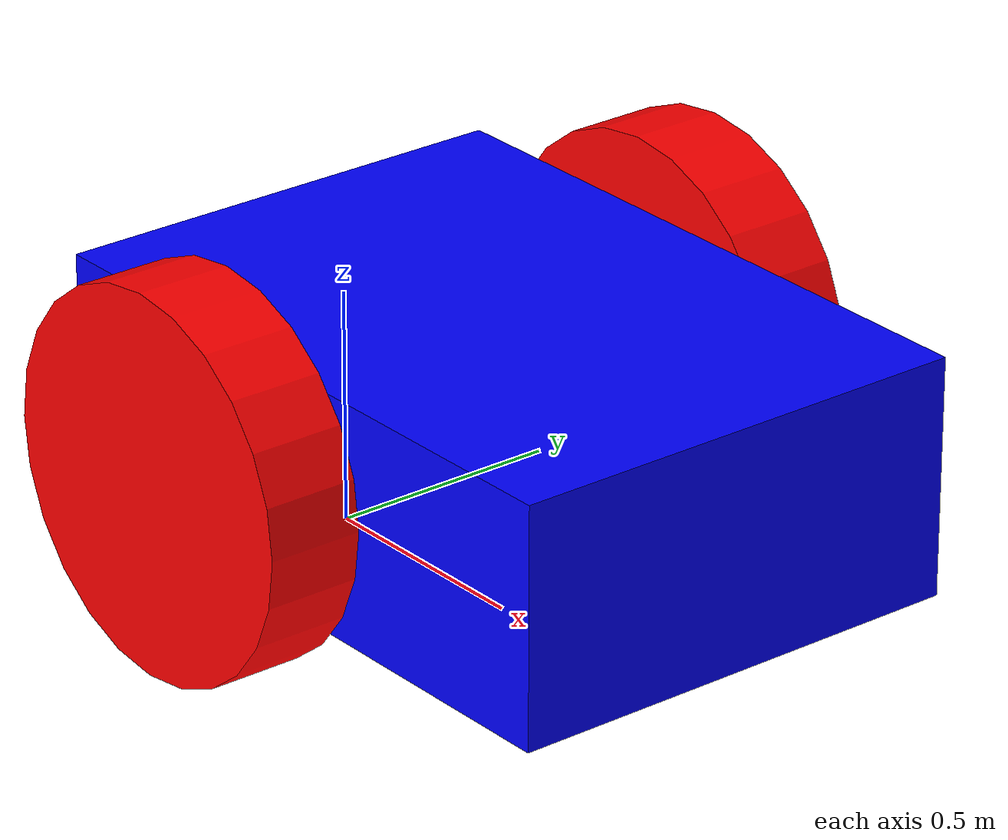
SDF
<?xml version="1.0"?>
<sdf version="1.8">

        <model name='vehicle_blue' canonical_link='chassis'>

            <frame name="lidar_frame" attached_to='chassis'>
                    <pose>0.8 0 0.5 0 0 0</pose>
            </frame>
            <frame name="base_link" attached_to="chassis">
                    <pose>0 0 0 0 0 0</pose>
            </frame>

            <!--chassis-->
            <link name='chassis'>
                <pose relative_to='__model__'>0.5 0 0.4 0 0 0</pose>
                <inertial> <!--inertial properties of the link mass, inertia matix-->
                    <mass>1.14395</mass>
                    <inertia>
                        <ixx>3.5329</ixx>
                        <ixy>0</ixy>
                        <ixz>0</ixz>
                        <iyy>3.81317</iyy>
                        <iyz>0</iyz>
                        <izz>4.76646</izz>
                    </inertia>
                </inertial>
                <visual name='visual'>
                    <geometry>
                        <box>
                            <size>1.4 1.0 0.5</size>
                        </box>
                    </geometry>
                    <!--Color of the link-->
                    <material>
                        <ambient>0.0 0.0 1.0 1</ambient>
                        <diffuse>0.0 0.0 1.0 1</diffuse>
                        <specular>0.0 0.0 1.0 1</specular>
                    </material>
                </visual>
                <collision name='collision'>
                    <geometry>
                        <box>
                            <size>1.4 1.0 0.5</size>
                        </box>
                    </geometry>
                </collision>
                <sensor name="imu_sensor" type="imu">
                    <always_on>1</always_on>
                    <update_rate>1</update_rate>
                    <visualize>true</visualize>
                    <topic>imu</topic>
                </sensor>

                <sensor name='gpu_lidar' type='gpu_lidar'>
                    <pose relative_to='lidar_frame'>0 0 0 0 0 0</pose>
                    <topic>/scan</topic>
                    <update_rate>5</update_rate>
                    <ray>
                        <scan>
                            <horizontal>
                                <samples>180</samples>
                                <resolution>1</resolution>
                                <min_angle>-1.396263</min_angle>
                                <max_angle>1.396263</max_angle>
                            </horizontal>
                            <vertical>
                                <samples>1</samples>
                                <resolution>0.01</resolution>
                                <min_angle>0</min_angle>
                                <max_angle>0</max_angle>
                            </vertical>
                        </scan>
                        <range>
                            <min>0.08</min>
                            <max>100.0</max>
                            <resolution>0.01</resolution>
                        </range>
                    </ray>
                    <always_on>1</always_on>
                    <visualize>true</visualize>
                </sensor>
                <!-- Contact (bumper) sensor -->
                <sensor name="bumper_contacts" type="contact">
                      <update_rate>50</update_rate>
                      <!-- Monitor this/these collision(s) for contacts -->
                      <contact>
                        <collision>collision</collision>
                      </contact>
                      <!-- Gazebo Transport topic name -->
                      <topic>contacts</topic>
                      <always_on>true</always_on>
                      <visualize>false</visualize>
                </sensor>
            </link>

            <!--Left wheel-->
            <link name='left_wheel'>
                <pose relative_to="chassis">-0.2 0.6 0 -1.5707 0 0</pose> <!--angles are in radian-->
                <inertial>
                    <mass>1</mass>
                    <inertia>
                        <ixx>0.043333</ixx>
                        <ixy>0</ixy>
                        <ixz>0</ixz>
                        <iyy>0.043333</iyy>
                        <iyz>0</iyz>
                        <izz>0.08</izz>
                    </inertia>
                </inertial>
                <visual name='visual'>
                    <geometry>
                        <cylinder>
                            <radius>0.4</radius>
                            <length>0.2</length>
                        </cylinder>
                    </geometry>
                    <material>
                        <ambient>1.0 0.0 0.0 1</ambient>
                        <diffuse>1.0 0.0 0.0 1</diffuse>
                        <specular>1.0 0.0 0.0 1</specular>
                    </material>
                </visual>
                <collision name='collision'>
                    <geometry>
                        <cylinder>
                            <radius>0.4</radius>
                            <length>0.2</length>
                        </cylinder>
                    </geometry>
                </collision>
            </link>

            <!--The same as left wheel but with different position-->
            <link name='right_wheel'>
                <pose relative_to="chassis">-0.2 -0.6 0 -1.5707 0 0</pose> <!--angles are in radian-->
                <inertial>
                    <mass>1</mass>
                    <inertia>
                        <ixx>0.043333</ixx>
                        <ixy>0</ixy>
                        <ixz>0</ixz>
                        <iyy>0.043333</iyy>
                        <iyz>0</iyz>
                        <izz>0.08</izz>
                    </inertia>
                </inertial>
                <visual name='visual'>
                    <geometry>
                        <cylinder>
                            <radius>0.4</radius>
                            <length>0.2</length>
                        </cylinder>
                    </geometry>
                    <material>
                        <ambient>1.0 0.0 0.0 1</ambient>
                        <diffuse>1.0 0.0 0.0 1</diffuse>
                        <specular>1.0 0.0 0.0 1</specular>
                    </material>
                </visual>
                <collision name='collision'>
                    <geometry>
                        <cylinder>
                            <radius>0.4</radius>
                            <length>0.2</length>
                        </cylinder>
                    </geometry>
                </collision>
            </link>

            <!--arbitrary frame-->
            <frame name="caster_frame" attached_to='chassis'>
                <pose>0.8 0 -0.2 0 0 0</pose>
            </frame>

            <!--caster wheel-->
            <link name='caster'>
                <pose relative_to='caster_frame'>-0.5 0 0 0 0 0</pose>
                <inertial>
                    <mass>1</mass>
                    <inertia>
                        <ixx>0.016</ixx>
                        <ixy>0</ixy>
                        <ixz>0</ixz>
                        <iyy>0.016</iyy>
                        <iyz>0</iyz>
                        <izz>0.016</izz>
                    </inertia>
                </inertial>
                <visual name='visual'>
                    <geometry>
                        <sphere>
                            <radius>0.2</radius>
                        </sphere>
                    </geometry>
                    <material>
                        <ambient>0.0 1 0.0 1</ambient>
                        <diffuse>0.0 1 0.0 1</diffuse>
                        <specular>0.0 1 0.0 1</specular>
                    </material>
                </visual>
                <collision name='collision'>
                    <geometry>
                        <sphere>
                            <radius>0.2</radius>
                        </sphere>
                    </geometry>
                </collision>
            </link>

            <!--left wheel joint-->
            <joint name='left_wheel_joint' type='revolute'>
                <pose relative_to='left_wheel'/>
                <parent>chassis</parent>
                <child>left_wheel</child>
                <axis>
                    <xyz expressed_in='__model__'>0 1 0</xyz> <!--can be descired to any frame or even arbitrary frames-->
                    <limit>
                        <lower>-1.79769e+308</lower>    <!--negative infinity-->
                        <upper>1.79769e+308</upper>     <!--positive infinity-->
                    </limit>
                </axis>
            </joint>

            <!--right wheel joint-->
            <joint name='right_wheel_joint' type='revolute'>
                <pose relative_to='right_wheel'/>
                <parent>chassis</parent>
                <child>right_wheel</child>
                <axis>
                    <xyz expressed_in='__model__'>0 1 0</xyz>
                    <limit>
                        <lower>-1.79769e+308</lower>    <!--negative infinity-->
                        <upper>1.79769e+308</upper>     <!--positive infinity-->
                    </limit>
                </axis>
            </joint>

            <!--caster wheel joint--> <!--pose defult value is the child-->
            <joint name='caster_wheel' type='ball'>
                <parent>chassis</parent>
                <child>caster</child>
            </joint>

            <plugin filename="gz-sim-diff-drive-system"
                    name="gz::sim::systems::DiffDrive">
              <left_joint>left_wheel_joint</left_joint>
              <right_joint>right_wheel_joint</right_joint>
              <odometry_topic>/model/vehicle_blue/odometry</odometry_topic>
              <tf_topic>/tf</tf_topic>
              <frame_id>odom</frame_id>
              <child_frame_id>base_link</child_frame_id>

              <wheel_separation>1.2</wheel_separation>
              <wheel_radius>0.4</wheel_radius>
              <topic>cmd_vel</topic>
              <!-- pub rate -->
            </plugin>

        </model>
</sdf>
